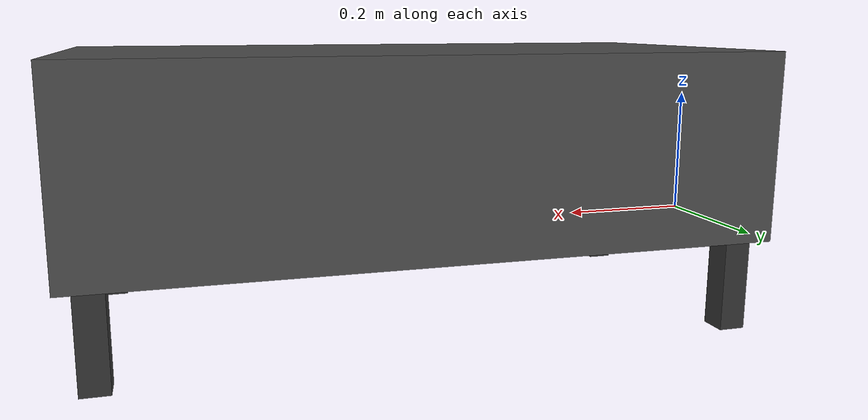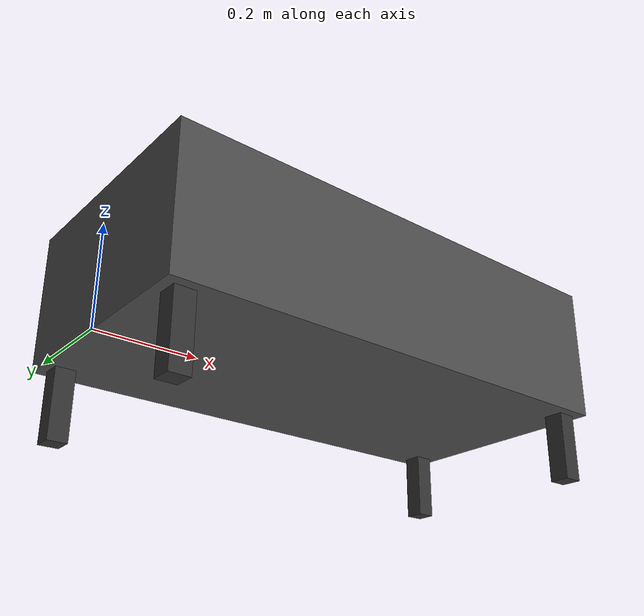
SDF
<?xml version="1.0" ?>
<sdf version="1.8">
<model name="conveyor_frame">
    <static>true</static>
    <pose>0.5 0 0.14 0 0 0</pose>
    <link name="link">
      <inertial><mass>100000</mass>
        <inertia><ixx>1e6</ixx><ixy>0</ixy><ixz>0</ixz>
                 <iyy>1e6</iyy><iyz>0</iyz><izz>1e6</izz></inertia>
      </inertial>

      <!-- Main body -->
      <collision name="frame_col">
        <geometry><box><size>1.0 0.5 0.28</size></box></geometry>
      </collision>
      <visual name="frame_vis">
        <geometry><box><size>1.0 0.5 0.28</size></box></geometry>
        <material>
          <ambient>0.28 0.28 0.28 1</ambient>
          <diffuse>0.30 0.30 0.30 1</diffuse>
          <specular>0.5 0.5 0.5 1</specular>
        </material>
      </visual>

      <!-- 4 corner legs -->
      <visual name="leg_fl"><pose>-0.46  0.21 -0.14 0 0 0</pose>
        <geometry><box><size>0.04 0.04 0.28</size></box></geometry>
        <material><ambient>0.2 0.2 0.2 1</ambient><diffuse>0.2 0.2 0.2 1</diffuse></material></visual>
      <visual name="leg_fr"><pose>-0.46 -0.21 -0.14 0 0 0</pose>
        <geometry><box><size>0.04 0.04 0.28</size></box></geometry>
        <material><ambient>0.2 0.2 0.2 1</ambient><diffuse>0.2 0.2 0.2 1</diffuse></material></visual>
      <visual name="leg_bl"><pose> 0.46  0.21 -0.14 0 0 0</pose>
        <geometry><box><size>0.04 0.04 0.28</size></box></geometry>
        <material><ambient>0.2 0.2 0.2 1</ambient><diffuse>0.2 0.2 0.2 1</diffuse></material></visual>
      <visual name="leg_br"><pose> 0.46 -0.21 -0.14 0 0 0</pose>
        <geometry><box><size>0.04 0.04 0.28</size></box></geometry>
        <material><ambient>0.2 0.2 0.2 1</ambient><diffuse>0.2 0.2 0.2 1</diffuse></material></visual>

      <!-- Cross beams -->
      <visual name="beam_front"><pose>-0.46 0 -0.10 0 0 0</pose>
        <geometry><box><size>0.04 0.46 0.04</size></box></geometry>
        <material><ambient>0.2 0.2 0.2 1</ambient><diffuse>0.2 0.2 0.2 1</diffuse></material></visual>
      <visual name="beam_back"><pose>0.46 0 -0.10 0 0 0</pose>
        <geometry><box><size>0.04 0.46 0.04</size></box></geometry>
        <material><ambient>0.2 0.2 0.2 1</ambient><diffuse>0.2 0.2 0.2 1</diffuse></material></visual>
    </link>
  </model>
</sdf>
